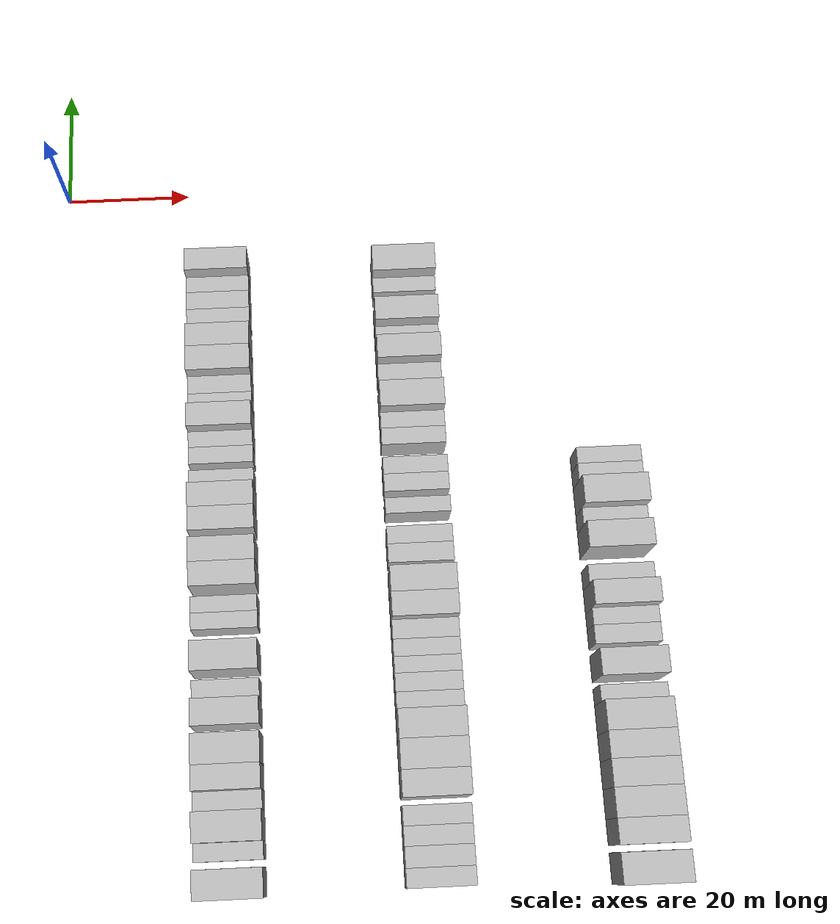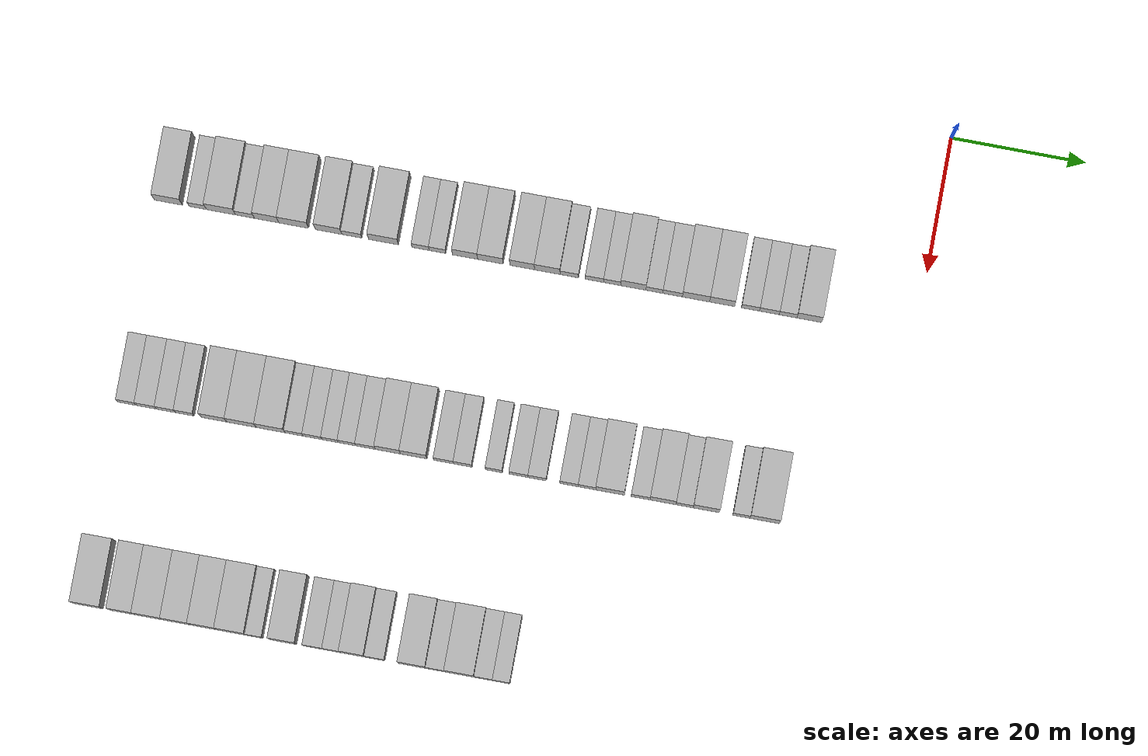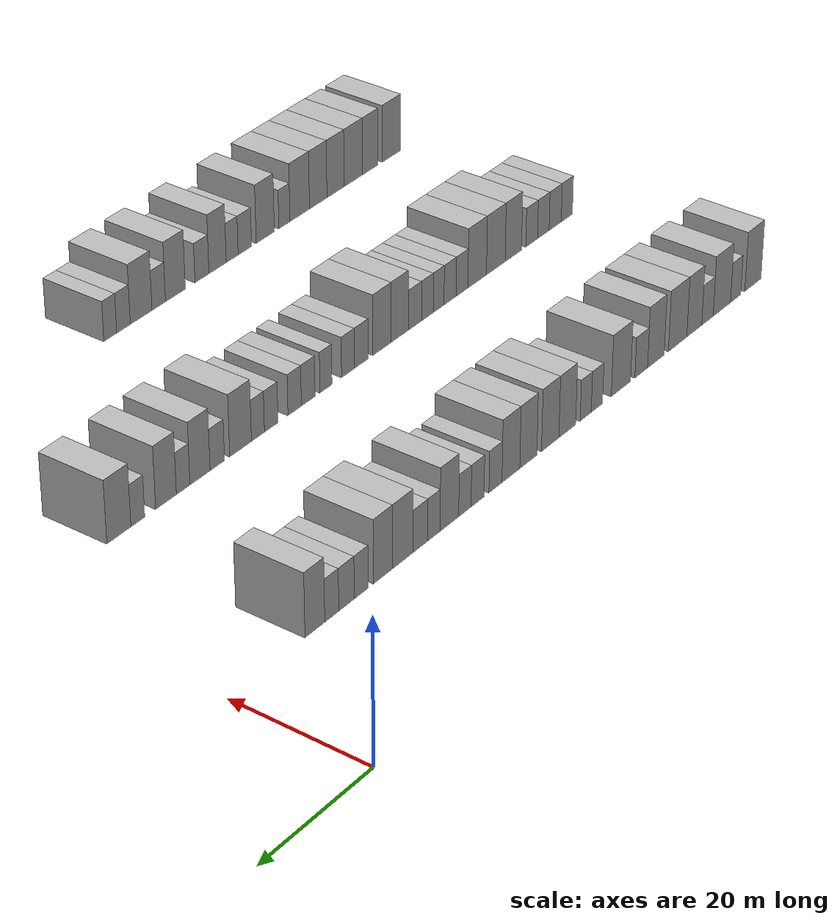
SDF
<sdf version="1.6">
 <world name="default">
  <model name="building_83">
   <static>1</static>
   <pose>25.0000 -110.6891 0 0.000000 0.000000 0.000000</pose>
   <link name="link">
    <pose>0 0 4.50 0 0 0</pose>
    <collision name="collision"><geometry><box><size>10.0000 4.1392 9.0000</size></box></geometry></collision>
    <visual name="visual">
     <cast_shadows>0</cast_shadows>
     <geometry><box><size>10.0000 4.1392 9.0000</size></box></geometry>
     <material>
      <script>
       <uri>model://HANNAS_wall/materials/scripts</uri>
       <uri>model://HANNAS_wall/materials/textures</uri>
       <name>vrc/HANNAS_wall</name>
      </script>
     </material>
    </visual>
   </link>
  </model>
  <model name="building_84">
   <static>1</static>
   <pose>25.0000 -106.3340 0 0.000000 0.000000 0.000000</pose>
   <link name="link">
    <pose>0 0 3.00 0 0 0</pose>
    <collision name="collision"><geometry><box><size>10.0000 2.5711 6.0000</size></box></geometry></collision>
    <visual name="visual">
     <cast_shadows>0</cast_shadows>
     <geometry><box><size>10.0000 2.5711 6.0000</size></box></geometry>
     <material>
      <script>
       <uri>model://HANNAS_wall/materials/scripts</uri>
       <uri>model://HANNAS_wall/materials/textures</uri>
       <name>vrc/HANNAS_wall</name>
      </script>
     </material>
    </visual>
   </link>
  </model>
  <model name="building_85">
   <static>1</static>
   <pose>25.0000 -102.8976 0 0.000000 0.000000 0.000000</pose>
   <link name="link">
    <pose>0 0 4.50 0 0 0</pose>
    <collision name="collision"><geometry><box><size>10.0000 4.3016 9.0000</size></box></geometry></collision>
    <visual name="visual">
     <cast_shadows>0</cast_shadows>
     <geometry><box><size>10.0000 4.3016 9.0000</size></box></geometry>
     <material>
      <script>
       <uri>model://HANNAS_wall/materials/scripts</uri>
       <uri>model://HANNAS_wall/materials/textures</uri>
       <name>vrc/HANNAS_wall</name>
      </script>
     </material>
    </visual>
   </link>
  </model>
  <model name="building_86">
   <static>1</static>
   <pose>25.0000 -99.3398 0 0.000000 0.000000 0.000000</pose>
   <link name="link">
    <pose>0 0 3.00 0 0 0</pose>
    <collision name="collision"><geometry><box><size>10.0000 2.8141 6.0000</size></box></geometry></collision>
    <visual name="visual">
     <cast_shadows>0</cast_shadows>
     <geometry><box><size>10.0000 2.8141 6.0000</size></box></geometry>
     <material>
      <script>
       <uri>model://HANNAS_wall/materials/scripts</uri>
       <uri>model://HANNAS_wall/materials/textures</uri>
       <name>vrc/HANNAS_wall</name>
      </script>
     </material>
    </visual>
   </link>
  </model>
  <model name="building_87">
   <static>1</static>
   <pose>25.0000 -96.1208 0 0.000000 0.000000 0.000000</pose>
   <link name="link">
    <pose>0 0 4.50 0 0 0</pose>
    <collision name="collision"><geometry><box><size>10.0000 3.6238 9.0000</size></box></geometry></collision>
    <visual name="visual">
     <cast_shadows>0</cast_shadows>
     <geometry><box><size>10.0000 3.6238 9.0000</size></box></geometry>
     <material>
      <script>
       <uri>model://HANNAS_wall/materials/scripts</uri>
       <uri>model://HANNAS_wall/materials/textures</uri>
       <name>vrc/HANNAS_wall</name>
      </script>
     </material>
    </visual>
   </link>
  </model>
  <model name="building_88">
   <static>1</static>
   <pose>25.0000 -92.0912 0 0.000000 0.000000 0.000000</pose>
   <link name="link">
    <pose>0 0 4.50 0 0 0</pose>
    <collision name="collision"><geometry><box><size>10.0000 4.4354 9.0000</size></box></geometry></collision>
    <visual name="visual">
     <cast_shadows>0</cast_shadows>
     <geometry><box><size>10.0000 4.4354 9.0000</size></box></geometry>
     <material>
      <script>
       <uri>model://HANNAS_wall/materials/scripts</uri>
       <uri>model://HANNAS_wall/materials/textures</uri>
       <name>vrc/HANNAS_wall</name>
      </script>
     </material>
    </visual>
   </link>
  </model>
  <model name="building_89">
   <static>1</static>
   <pose>25.0000 -86.9098 0 0.000000 0.000000 0.000000</pose>
   <link name="link">
    <pose>0 0 4.50 0 0 0</pose>
    <collision name="collision"><geometry><box><size>10.0000 3.9274 9.0000</size></box></geometry></collision>
    <visual name="visual">
     <cast_shadows>0</cast_shadows>
     <geometry><box><size>10.0000 3.9274 9.0000</size></box></geometry>
     <material>
      <script>
       <uri>model://HANNAS_wall/materials/scripts</uri>
       <uri>model://HANNAS_wall/materials/textures</uri>
       <name>vrc/HANNAS_wall</name>
      </script>
     </material>
    </visual>
   </link>
  </model>
  <model name="building_90">
   <static>1</static>
   <pose>25.0000 -83.4655 0 0.000000 0.000000 0.000000</pose>
   <link name="link">
    <pose>0 0 3.00 0 0 0</pose>
    <collision name="collision"><geometry><box><size>10.0000 2.9613 6.0000</size></box></geometry></collision>
    <visual name="visual">
     <cast_shadows>0</cast_shadows>
     <geometry><box><size>10.0000 2.9613 6.0000</size></box></geometry>
     <material>
      <script>
       <uri>model://HANNAS_wall/materials/scripts</uri>
       <uri>model://HANNAS_wall/materials/textures</uri>
       <name>vrc/HANNAS_wall</name>
      </script>
     </material>
    </visual>
   </link>
  </model>
  <model name="building_91">
   <static>1</static>
   <pose>25.0000 -78.7663 0 0.000000 0.000000 0.000000</pose>
   <link name="link">
    <pose>0 0 4.50 0 0 0</pose>
    <collision name="collision"><geometry><box><size>10.0000 4.4370 9.0000</size></box></geometry></collision>
    <visual name="visual">
     <cast_shadows>0</cast_shadows>
     <geometry><box><size>10.0000 4.4370 9.0000</size></box></geometry>
     <material>
      <script>
       <uri>model://HANNAS_wall/materials/scripts</uri>
       <uri>model://HANNAS_wall/materials/textures</uri>
       <name>vrc/HANNAS_wall</name>
      </script>
     </material>
    </visual>
   </link>
  </model>
  <model name="building_92">
   <static>1</static>
   <pose>25.0000 -73.2749 0 0.000000 0.000000 0.000000</pose>
   <link name="link">
    <pose>0 0 3.00 0 0 0</pose>
    <collision name="collision"><geometry><box><size>10.0000 2.5457 6.0000</size></box></geometry></collision>
    <visual name="visual">
     <cast_shadows>0</cast_shadows>
     <geometry><box><size>10.0000 2.5457 6.0000</size></box></geometry>
     <material>
      <script>
       <uri>model://HANNAS_wall/materials/scripts</uri>
       <uri>model://HANNAS_wall/materials/textures</uri>
       <name>vrc/HANNAS_wall</name>
      </script>
     </material>
    </visual>
   </link>
  </model>
  <model name="building_93">
   <static>1</static>
   <pose>25.0000 -70.7603 0 0.000000 0.000000 0.000000</pose>
   <link name="link">
    <pose>0 0 3.00 0 0 0</pose>
    <collision name="collision"><geometry><box><size>10.0000 2.4836 6.0000</size></box></geometry></collision>
    <visual name="visual">
     <cast_shadows>0</cast_shadows>
     <geometry><box><size>10.0000 2.4836 6.0000</size></box></geometry>
     <material>
      <script>
       <uri>model://HANNAS_wall/materials/scripts</uri>
       <uri>model://HANNAS_wall/materials/textures</uri>
       <name>vrc/HANNAS_wall</name>
      </script>
     </material>
    </visual>
   </link>
  </model>
  <model name="building_94">
   <static>1</static>
   <pose>25.0000 -66.6601 0 0.000000 0.000000 0.000000</pose>
   <link name="link">
    <pose>0 0 4.50 0 0 0</pose>
    <collision name="collision"><geometry><box><size>10.0000 3.7169 9.0000</size></box></geometry></collision>
    <visual name="visual">
     <cast_shadows>0</cast_shadows>
     <geometry><box><size>10.0000 3.7169 9.0000</size></box></geometry>
     <material>
      <script>
       <uri>model://HANNAS_wall/materials/scripts</uri>
       <uri>model://HANNAS_wall/materials/textures</uri>
       <name>vrc/HANNAS_wall</name>
      </script>
     </material>
    </visual>
   </link>
  </model>
  <model name="building_95">
   <static>1</static>
   <pose>25.0000 -62.9098 0 0.000000 0.000000 0.000000</pose>
   <link name="link">
    <pose>0 0 4.50 0 0 0</pose>
    <collision name="collision"><geometry><box><size>10.0000 3.7836 9.0000</size></box></geometry></collision>
    <visual name="visual">
     <cast_shadows>0</cast_shadows>
     <geometry><box><size>10.0000 3.7836 9.0000</size></box></geometry>
     <material>
      <script>
       <uri>model://HANNAS_wall/materials/scripts</uri>
       <uri>model://HANNAS_wall/materials/textures</uri>
       <name>vrc/HANNAS_wall</name>
      </script>
     </material>
    </visual>
   </link>
  </model>
  <model name="building_96">
   <static>1</static>
   <pose>25.0000 -58.1884 0 0.000000 0.000000 0.000000</pose>
   <link name="link">
    <pose>0 0 4.50 0 0 0</pose>
    <collision name="collision"><geometry><box><size>10.0000 3.6592 9.0000</size></box></geometry></collision>
    <visual name="visual">
     <cast_shadows>0</cast_shadows>
     <geometry><box><size>10.0000 3.6592 9.0000</size></box></geometry>
     <material>
      <script>
       <uri>model://HANNAS_wall/materials/scripts</uri>
       <uri>model://HANNAS_wall/materials/textures</uri>
       <name>vrc/HANNAS_wall</name>
      </script>
     </material>
    </visual>
   </link>
  </model>
  <model name="building_97">
   <static>1</static>
   <pose>25.0000 -54.4680 0 0.000000 0.000000 0.000000</pose>
   <link name="link">
    <pose>0 0 4.50 0 0 0</pose>
    <collision name="collision"><geometry><box><size>10.0000 3.7816 9.0000</size></box></geometry></collision>
    <visual name="visual">
     <cast_shadows>0</cast_shadows>
     <geometry><box><size>10.0000 3.7816 9.0000</size></box></geometry>
     <material>
      <script>
       <uri>model://HANNAS_wall/materials/scripts</uri>
       <uri>model://HANNAS_wall/materials/textures</uri>
       <name>vrc/HANNAS_wall</name>
      </script>
     </material>
    </visual>
   </link>
  </model>
  <model name="building_98">
   <static>1</static>
   <pose>25.0000 -51.2087 0 0.000000 0.000000 0.000000</pose>
   <link name="link">
    <pose>0 0 3.00 0 0 0</pose>
    <collision name="collision"><geometry><box><size>10.0000 2.7370 6.0000</size></box></geometry></collision>
    <visual name="visual">
     <cast_shadows>0</cast_shadows>
     <geometry><box><size>10.0000 2.7370 6.0000</size></box></geometry>
     <material>
      <script>
       <uri>model://HANNAS_wall/materials/scripts</uri>
       <uri>model://HANNAS_wall/materials/textures</uri>
       <name>vrc/HANNAS_wall</name>
      </script>
     </material>
    </visual>
   </link>
  </model>
  <model name="building_99">
   <static>1</static>
   <pose>25.0000 -47.4884 0 0.000000 0.000000 0.000000</pose>
   <link name="link">
    <pose>0 0 3.00 0 0 0</pose>
    <collision name="collision"><geometry><box><size>10.0000 2.7035 6.0000</size></box></geometry></collision>
    <visual name="visual">
     <cast_shadows>0</cast_shadows>
     <geometry><box><size>10.0000 2.7035 6.0000</size></box></geometry>
     <material>
      <script>
       <uri>model://HANNAS_wall/materials/scripts</uri>
       <uri>model://HANNAS_wall/materials/textures</uri>
       <name>vrc/HANNAS_wall</name>
      </script>
     </material>
    </visual>
   </link>
  </model>
  <model name="building_100">
   <static>1</static>
   <pose>25.0000 -44.8704 0 0.000000 0.000000 0.000000</pose>
   <link name="link">
    <pose>0 0 3.00 0 0 0</pose>
    <collision name="collision"><geometry><box><size>10.0000 2.5326 6.0000</size></box></geometry></collision>
    <visual name="visual">
     <cast_shadows>0</cast_shadows>
     <geometry><box><size>10.0000 2.5326 6.0000</size></box></geometry>
     <material>
      <script>
       <uri>model://HANNAS_wall/materials/scripts</uri>
       <uri>model://HANNAS_wall/materials/textures</uri>
       <name>vrc/HANNAS_wall</name>
      </script>
     </material>
    </visual>
   </link>
  </model>
  <model name="building_101">
   <static>1</static>
   <pose>25.0000 -41.7274 0 0.000000 0.000000 0.000000</pose>
   <link name="link">
    <pose>0 0 4.50 0 0 0</pose>
    <collision name="collision"><geometry><box><size>10.0000 3.7533 9.0000</size></box></geometry></collision>
    <visual name="visual">
     <cast_shadows>0</cast_shadows>
     <geometry><box><size>10.0000 3.7533 9.0000</size></box></geometry>
     <material>
      <script>
       <uri>model://HANNAS_wall/materials/scripts</uri>
       <uri>model://HANNAS_wall/materials/textures</uri>
       <name>vrc/HANNAS_wall</name>
      </script>
     </material>
    </visual>
   </link>
  </model>
  <model name="building_102">
   <static>1</static>
   <pose>25.0000 -38.6006 0 0.000000 0.000000 0.000000</pose>
   <link name="link">
    <pose>0 0 3.00 0 0 0</pose>
    <collision name="collision"><geometry><box><size>10.0000 2.5004 6.0000</size></box></geometry></collision>
    <visual name="visual">
     <cast_shadows>0</cast_shadows>
     <geometry><box><size>10.0000 2.5004 6.0000</size></box></geometry>
     <material>
      <script>
       <uri>model://HANNAS_wall/materials/scripts</uri>
       <uri>model://HANNAS_wall/materials/textures</uri>
       <name>vrc/HANNAS_wall</name>
      </script>
     </material>
    </visual>
   </link>
  </model>
  <model name="building_103">
   <static>1</static>
   <pose>25.0000 -35.8994 0 0.000000 0.000000 0.000000</pose>
   <link name="link">
    <pose>0 0 3.00 0 0 0</pose>
    <collision name="collision"><geometry><box><size>10.0000 2.9019 6.0000</size></box></geometry></collision>
    <visual name="visual">
     <cast_shadows>0</cast_shadows>
     <geometry><box><size>10.0000 2.9019 6.0000</size></box></geometry>
     <material>
      <script>
       <uri>model://HANNAS_wall/materials/scripts</uri>
       <uri>model://HANNAS_wall/materials/textures</uri>
       <name>vrc/HANNAS_wall</name>
      </script>
     </material>
    </visual>
   </link>
  </model>
  <model name="building_104">
   <static>1</static>
   <pose>25.0000 -32.4344 0 0.000000 0.000000 0.000000</pose>
   <link name="link">
    <pose>0 0 4.50 0 0 0</pose>
    <collision name="collision"><geometry><box><size>10.0000 4.0282 9.0000</size></box></geometry></collision>
    <visual name="visual">
     <cast_shadows>0</cast_shadows>
     <geometry><box><size>10.0000 4.0282 9.0000</size></box></geometry>
     <material>
      <script>
       <uri>model://HANNAS_wall/materials/scripts</uri>
       <uri>model://HANNAS_wall/materials/textures</uri>
       <name>vrc/HANNAS_wall</name>
      </script>
     </material>
    </visual>
   </link>
  </model>
  <model name="building_105">
   <static>1</static>
   <pose>25.0000 -28.5612 0 0.000000 0.000000 0.000000</pose>
   <link name="link">
    <pose>0 0 4.50 0 0 0</pose>
    <collision name="collision"><geometry><box><size>10.0000 3.7182 9.0000</size></box></geometry></collision>
    <visual name="visual">
     <cast_shadows>0</cast_shadows>
     <geometry><box><size>10.0000 3.7182 9.0000</size></box></geometry>
     <material>
      <script>
       <uri>model://HANNAS_wall/materials/scripts</uri>
       <uri>model://HANNAS_wall/materials/textures</uri>
       <name>vrc/HANNAS_wall</name>
      </script>
     </material>
    </visual>
   </link>
  </model>
  <model name="building_106">
   <static>1</static>
   <pose>25.0000 -24.3690 0 0.000000 0.000000 0.000000</pose>
   <link name="link">
    <pose>0 0 3.00 0 0 0</pose>
    <collision name="collision"><geometry><box><size>10.0000 2.6663 6.0000</size></box></geometry></collision>
    <visual name="visual">
     <cast_shadows>0</cast_shadows>
     <geometry><box><size>10.0000 2.6663 6.0000</size></box></geometry>
     <material>
      <script>
       <uri>model://HANNAS_wall/materials/scripts</uri>
       <uri>model://HANNAS_wall/materials/textures</uri>
       <name>vrc/HANNAS_wall</name>
      </script>
     </material>
    </visual>
   </link>
  </model>
  <model name="building_107">
   <static>1</static>
   <pose>25.0000 -21.5742 0 0.000000 0.000000 0.000000</pose>
   <link name="link">
    <pose>0 0 3.00 0 0 0</pose>
    <collision name="collision"><geometry><box><size>10.0000 2.9233 6.0000</size></box></geometry></collision>
    <visual name="visual">
     <cast_shadows>0</cast_shadows>
     <geometry><box><size>10.0000 2.9233 6.0000</size></box></geometry>
     <material>
      <script>
       <uri>model://HANNAS_wall/materials/scripts</uri>
       <uri>model://HANNAS_wall/materials/textures</uri>
       <name>vrc/HANNAS_wall</name>
      </script>
     </material>
    </visual>
   </link>
  </model>
  <model name="building_108">
   <static>1</static>
   <pose>25.0000 -18.8007 0 0.000000 0.000000 0.000000</pose>
   <link name="link">
    <pose>0 0 3.00 0 0 0</pose>
    <collision name="collision"><geometry><box><size>10.0000 2.6239 6.0000</size></box></geometry></collision>
    <visual name="visual">
     <cast_shadows>0</cast_shadows>
     <geometry><box><size>10.0000 2.6239 6.0000</size></box></geometry>
     <material>
      <script>
       <uri>model://HANNAS_wall/materials/scripts</uri>
       <uri>model://HANNAS_wall/materials/textures</uri>
       <name>vrc/HANNAS_wall</name>
      </script>
     </material>
    </visual>
   </link>
  </model>
  <model name="building_109">
   <static>1</static>
   <pose>25.0000 -15.6607 0 0.000000 0.000000 0.000000</pose>
   <link name="link">
    <pose>0 0 4.50 0 0 0</pose>
    <collision name="collision"><geometry><box><size>10.0000 3.6561 9.0000</size></box></geometry></collision>
    <visual name="visual">
     <cast_shadows>0</cast_shadows>
     <geometry><box><size>10.0000 3.6561 9.0000</size></box></geometry>
     <material>
      <script>
       <uri>model://HANNAS_wall/materials/scripts</uri>
       <uri>model://HANNAS_wall/materials/textures</uri>
       <name>vrc/HANNAS_wall</name>
      </script>
     </material>
    </visual>
   </link>
  </model>
  <model name="building_314">
   <static>1</static>
   <pose>55.0000 -111.1379 0 0.000000 0.000000 0.000000</pose>
   <link name="link">
    <pose>0 0 3.00 0 0 0</pose>
    <collision name="collision"><geometry><box><size>10.0000 2.7258 6.0000</size></box></geometry></collision>
    <visual name="visual">
     <cast_shadows>0</cast_shadows>
     <geometry><box><size>10.0000 2.7258 6.0000</size></box></geometry>
     <material>
      <script>
       <uri>model://HANNAS_wall/materials/scripts</uri>
       <uri>model://HANNAS_wall/materials/textures</uri>
       <name>vrc/HANNAS_wall</name>
      </script>
     </material>
    </visual>
   </link>
  </model>
  <model name="building_315">
   <static>1</static>
   <pose>55.0000 -108.2897 0 0.000000 0.000000 0.000000</pose>
   <link name="link">
    <pose>0 0 3.00 0 0 0</pose>
    <collision name="collision"><geometry><box><size>10.0000 2.9706 6.0000</size></box></geometry></collision>
    <visual name="visual">
     <cast_shadows>0</cast_shadows>
     <geometry><box><size>10.0000 2.9706 6.0000</size></box></geometry>
     <material>
      <script>
       <uri>model://HANNAS_wall/materials/scripts</uri>
       <uri>model://HANNAS_wall/materials/textures</uri>
       <name>vrc/HANNAS_wall</name>
      </script>
     </material>
    </visual>
   </link>
  </model>
  <model name="building_316">
   <static>1</static>
   <pose>55.0000 -105.4061 0 0.000000 0.000000 0.000000</pose>
   <link name="link">
    <pose>0 0 3.00 0 0 0</pose>
    <collision name="collision"><geometry><box><size>10.0000 2.7967 6.0000</size></box></geometry></collision>
    <visual name="visual">
     <cast_shadows>0</cast_shadows>
     <geometry><box><size>10.0000 2.7967 6.0000</size></box></geometry>
     <material>
      <script>
       <uri>model://HANNAS_wall/materials/scripts</uri>
       <uri>model://HANNAS_wall/materials/textures</uri>
       <name>vrc/HANNAS_wall</name>
      </script>
     </material>
    </visual>
   </link>
  </model>
  <model name="building_317">
   <static>1</static>
   <pose>55.0000 -102.6036 0 0.000000 0.000000 0.000000</pose>
   <link name="link">
    <pose>0 0 3.00 0 0 0</pose>
    <collision name="collision"><geometry><box><size>10.0000 2.8082 6.0000</size></box></geometry></collision>
    <visual name="visual">
     <cast_shadows>0</cast_shadows>
     <geometry><box><size>10.0000 2.8082 6.0000</size></box></geometry>
     <material>
      <script>
       <uri>model://HANNAS_wall/materials/scripts</uri>
       <uri>model://HANNAS_wall/materials/textures</uri>
       <name>vrc/HANNAS_wall</name>
      </script>
     </material>
    </visual>
   </link>
  </model>
  <model name="building_318">
   <static>1</static>
   <pose>55.0000 -98.2653 0 0.000000 0.000000 0.000000</pose>
   <link name="link">
    <pose>0 0 4.50 0 0 0</pose>
    <collision name="collision"><geometry><box><size>10.0000 3.8685 9.0000</size></box></geometry></collision>
    <visual name="visual">
     <cast_shadows>0</cast_shadows>
     <geometry><box><size>10.0000 3.8685 9.0000</size></box></geometry>
     <material>
      <script>
       <uri>model://HANNAS_wall/materials/scripts</uri>
       <uri>model://HANNAS_wall/materials/textures</uri>
       <name>vrc/HANNAS_wall</name>
      </script>
     </material>
    </visual>
   </link>
  </model>
  <model name="building_319">
   <static>1</static>
   <pose>55.0000 -94.1586 0 0.000000 0.000000 0.000000</pose>
   <link name="link">
    <pose>0 0 4.50 0 0 0</pose>
    <collision name="collision"><geometry><box><size>10.0000 4.3449 9.0000</size></box></geometry></collision>
    <visual name="visual">
     <cast_shadows>0</cast_shadows>
     <geometry><box><size>10.0000 4.3449 9.0000</size></box></geometry>
     <material>
      <script>
       <uri>model://HANNAS_wall/materials/scripts</uri>
       <uri>model://HANNAS_wall/materials/textures</uri>
       <name>vrc/HANNAS_wall</name>
      </script>
     </material>
    </visual>
   </link>
  </model>
  <model name="building_320">
   <static>1</static>
   <pose>55.0000 -89.8591 0 0.000000 0.000000 0.000000</pose>
   <link name="link">
    <pose>0 0 4.50 0 0 0</pose>
    <collision name="collision"><geometry><box><size>10.0000 4.2540 9.0000</size></box></geometry></collision>
    <visual name="visual">
     <cast_shadows>0</cast_shadows>
     <geometry><box><size>10.0000 4.2540 9.0000</size></box></geometry>
     <material>
      <script>
       <uri>model://HANNAS_wall/materials/scripts</uri>
       <uri>model://HANNAS_wall/materials/textures</uri>
       <name>vrc/HANNAS_wall</name>
      </script>
     </material>
    </visual>
   </link>
  </model>
  <model name="building_321">
   <static>1</static>
   <pose>55.0000 -86.3934 0 0.000000 0.000000 0.000000</pose>
   <link name="link">
    <pose>0 0 3.00 0 0 0</pose>
    <collision name="collision"><geometry><box><size>10.0000 2.6775 6.0000</size></box></geometry></collision>
    <visual name="visual">
     <cast_shadows>0</cast_shadows>
     <geometry><box><size>10.0000 2.6775 6.0000</size></box></geometry>
     <material>
      <script>
       <uri>model://HANNAS_wall/materials/scripts</uri>
       <uri>model://HANNAS_wall/materials/textures</uri>
       <name>vrc/HANNAS_wall</name>
      </script>
     </material>
    </visual>
   </link>
  </model>
  <model name="building_322">
   <static>1</static>
   <pose>55.0000 -83.6778 0 0.000000 0.000000 0.000000</pose>
   <link name="link">
    <pose>0 0 3.00 0 0 0</pose>
    <collision name="collision"><geometry><box><size>10.0000 2.7536 6.0000</size></box></geometry></collision>
    <visual name="visual">
     <cast_shadows>0</cast_shadows>
     <geometry><box><size>10.0000 2.7536 6.0000</size></box></geometry>
     <material>
      <script>
       <uri>model://HANNAS_wall/materials/scripts</uri>
       <uri>model://HANNAS_wall/materials/textures</uri>
       <name>vrc/HANNAS_wall</name>
      </script>
     </material>
    </visual>
   </link>
  </model>
  <model name="building_323">
   <static>1</static>
   <pose>55.0000 -81.0873 0 0.000000 0.000000 0.000000</pose>
   <link name="link">
    <pose>0 0 3.00 0 0 0</pose>
    <collision name="collision"><geometry><box><size>10.0000 2.4275 6.0000</size></box></geometry></collision>
    <visual name="visual">
     <cast_shadows>0</cast_shadows>
     <geometry><box><size>10.0000 2.4275 6.0000</size></box></geometry>
     <material>
      <script>
       <uri>model://HANNAS_wall/materials/scripts</uri>
       <uri>model://HANNAS_wall/materials/textures</uri>
       <name>vrc/HANNAS_wall</name>
      </script>
     </material>
    </visual>
   </link>
  </model>
  <model name="building_324">
   <static>1</static>
   <pose>55.0000 -78.5776 0 0.000000 0.000000 0.000000</pose>
   <link name="link">
    <pose>0 0 3.00 0 0 0</pose>
    <collision name="collision"><geometry><box><size>10.0000 2.5920 6.0000</size></box></geometry></collision>
    <visual name="visual">
     <cast_shadows>0</cast_shadows>
     <geometry><box><size>10.0000 2.5920 6.0000</size></box></geometry>
     <material>
      <script>
       <uri>model://HANNAS_wall/materials/scripts</uri>
       <uri>model://HANNAS_wall/materials/textures</uri>
       <name>vrc/HANNAS_wall</name>
      </script>
     </material>
    </visual>
   </link>
  </model>
  <model name="building_325">
   <static>1</static>
   <pose>55.0000 -75.8238 0 0.000000 0.000000 0.000000</pose>
   <link name="link">
    <pose>0 0 3.00 0 0 0</pose>
    <collision name="collision"><geometry><box><size>10.0000 2.9155 6.0000</size></box></geometry></collision>
    <visual name="visual">
     <cast_shadows>0</cast_shadows>
     <geometry><box><size>10.0000 2.9155 6.0000</size></box></geometry>
     <material>
      <script>
       <uri>model://HANNAS_wall/materials/scripts</uri>
       <uri>model://HANNAS_wall/materials/textures</uri>
       <name>vrc/HANNAS_wall</name>
      </script>
     </material>
    </visual>
   </link>
  </model>
  <model name="building_326">
   <static>1</static>
   <pose>55.0000 -72.5189 0 0.000000 0.000000 0.000000</pose>
   <link name="link">
    <pose>0 0 4.50 0 0 0</pose>
    <collision name="collision"><geometry><box><size>10.0000 3.6944 9.0000</size></box></geometry></collision>
    <visual name="visual">
     <cast_shadows>0</cast_shadows>
     <geometry><box><size>10.0000 3.6944 9.0000</size></box></geometry>
     <material>
      <script>
       <uri>model://HANNAS_wall/materials/scripts</uri>
       <uri>model://HANNAS_wall/materials/textures</uri>
       <name>vrc/HANNAS_wall</name>
      </script>
     </material>
    </visual>
   </link>
  </model>
  <model name="building_327">
   <static>1</static>
   <pose>55.0000 -68.6946 0 0.000000 0.000000 0.000000</pose>
   <link name="link">
    <pose>0 0 4.50 0 0 0</pose>
    <collision name="collision"><geometry><box><size>10.0000 3.9541 9.0000</size></box></geometry></collision>
    <visual name="visual">
     <cast_shadows>0</cast_shadows>
     <geometry><box><size>10.0000 3.9541 9.0000</size></box></geometry>
     <material>
      <script>
       <uri>model://HANNAS_wall/materials/scripts</uri>
       <uri>model://HANNAS_wall/materials/textures</uri>
       <name>vrc/HANNAS_wall</name>
      </script>
     </material>
    </visual>
   </link>
  </model>
  <model name="building_328">
   <static>1</static>
   <pose>55.0000 -64.2583 0 0.000000 0.000000 0.000000</pose>
   <link name="link">
    <pose>0 0 3.00 0 0 0</pose>
    <collision name="collision"><geometry><box><size>10.0000 2.9184 6.0000</size></box></geometry></collision>
    <visual name="visual">
     <cast_shadows>0</cast_shadows>
     <geometry><box><size>10.0000 2.9184 6.0000</size></box></geometry>
     <material>
      <script>
       <uri>model://HANNAS_wall/materials/scripts</uri>
       <uri>model://HANNAS_wall/materials/textures</uri>
       <name>vrc/HANNAS_wall</name>
      </script>
     </material>
    </visual>
   </link>
  </model>
  <model name="building_329">
   <static>1</static>
   <pose>55.0000 -61.4358 0 0.000000 0.000000 0.000000</pose>
   <link name="link">
    <pose>0 0 3.00 0 0 0</pose>
    <collision name="collision"><geometry><box><size>10.0000 2.7267 6.0000</size></box></geometry></collision>
    <visual name="visual">
     <cast_shadows>0</cast_shadows>
     <geometry><box><size>10.0000 2.7267 6.0000</size></box></geometry>
     <material>
      <script>
       <uri>model://HANNAS_wall/materials/scripts</uri>
       <uri>model://HANNAS_wall/materials/textures</uri>
       <name>vrc/HANNAS_wall</name>
      </script>
     </material>
    </visual>
   </link>
  </model>
  <model name="building_330">
   <static>1</static>
   <pose>55.0000 -56.8287 0 0.000000 0.000000 0.000000</pose>
   <link name="link">
    <pose>0 0 3.00 0 0 0</pose>
    <collision name="collision"><geometry><box><size>10.0000 2.4875 6.0000</size></box></geometry></collision>
    <visual name="visual">
     <cast_shadows>0</cast_shadows>
     <geometry><box><size>10.0000 2.4875 6.0000</size></box></geometry>
     <material>
      <script>
       <uri>model://HANNAS_wall/materials/scripts</uri>
       <uri>model://HANNAS_wall/materials/textures</uri>
       <name>vrc/HANNAS_wall</name>
      </script>
     </material>
    </visual>
   </link>
  </model>
  <model name="building_331">
   <static>1</static>
   <pose>55.0000 -53.1826 0 0.000000 0.000000 0.000000</pose>
   <link name="link">
    <pose>0 0 3.00 0 0 0</pose>
    <collision name="collision"><geometry><box><size>10.0000 2.8047 6.0000</size></box></geometry></collision>
    <visual name="visual">
     <cast_shadows>0</cast_shadows>
     <geometry><box><size>10.0000 2.8047 6.0000</size></box></geometry>
     <material>
      <script>
       <uri>model://HANNAS_wall/materials/scripts</uri>
       <uri>model://HANNAS_wall/materials/textures</uri>
       <name>vrc/HANNAS_wall</name>
      </script>
     </material>
    </visual>
   </link>
  </model>
  <model name="building_332">
   <static>1</static>
   <pose>55.0000 -50.4234 0 0.000000 0.000000 0.000000</pose>
   <link name="link">
    <pose>0 0 3.00 0 0 0</pose>
    <collision name="collision"><geometry><box><size>10.0000 2.7137 6.0000</size></box></geometry></collision>
    <visual name="visual">
     <cast_shadows>0</cast_shadows>
     <geometry><box><size>10.0000 2.7137 6.0000</size></box></geometry>
     <material>
      <script>
       <uri>model://HANNAS_wall/materials/scripts</uri>
       <uri>model://HANNAS_wall/materials/textures</uri>
       <name>vrc/HANNAS_wall</name>
      </script>
     </material>
    </visual>
   </link>
  </model>
  <model name="building_333">
   <static>1</static>
   <pose>55.0000 -45.7152 0 0.000000 0.000000 0.000000</pose>
   <link name="link">
    <pose>0 0 3.00 0 0 0</pose>
    <collision name="collision"><geometry><box><size>10.0000 2.7028 6.0000</size></box></geometry></collision>
    <visual name="visual">
     <cast_shadows>0</cast_shadows>
     <geometry><box><size>10.0000 2.7028 6.0000</size></box></geometry>
     <material>
      <script>
       <uri>model://HANNAS_wall/materials/scripts</uri>
       <uri>model://HANNAS_wall/materials/textures</uri>
       <name>vrc/HANNAS_wall</name>
      </script>
     </material>
    </visual>
   </link>
  </model>
  <model name="building_334">
   <static>1</static>
   <pose>55.0000 -43.0712 0 0.000000 0.000000 0.000000</pose>
   <link name="link">
    <pose>0 0 3.00 0 0 0</pose>
    <collision name="collision"><geometry><box><size>10.0000 2.5852 6.0000</size></box></geometry></collision>
    <visual name="visual">
     <cast_shadows>0</cast_shadows>
     <geometry><box><size>10.0000 2.5852 6.0000</size></box></geometry>
     <material>
      <script>
       <uri>model://HANNAS_wall/materials/scripts</uri>
       <uri>model://HANNAS_wall/materials/textures</uri>
       <name>vrc/HANNAS_wall</name>
      </script>
     </material>
    </visual>
   </link>
  </model>
  <model name="building_335">
   <static>1</static>
   <pose>55.0000 -39.6541 0 0.000000 0.000000 0.000000</pose>
   <link name="link">
    <pose>0 0 4.50 0 0 0</pose>
    <collision name="collision"><geometry><box><size>10.0000 4.2490 9.0000</size></box></geometry></collision>
    <visual name="visual">
     <cast_shadows>0</cast_shadows>
     <geometry><box><size>10.0000 4.2490 9.0000</size></box></geometry>
     <material>
      <script>
       <uri>model://HANNAS_wall/materials/scripts</uri>
       <uri>model://HANNAS_wall/materials/textures</uri>
       <name>vrc/HANNAS_wall</name>
      </script>
     </material>
    </visual>
   </link>
  </model>
  <model name="building_336">
   <static>1</static>
   <pose>55.0000 -35.1371 0 0.000000 0.000000 0.000000</pose>
   <link name="link">
    <pose>0 0 3.00 0 0 0</pose>
    <collision name="collision"><geometry><box><size>10.0000 2.7850 6.0000</size></box></geometry></collision>
    <visual name="visual">
     <cast_shadows>0</cast_shadows>
     <geometry><box><size>10.0000 2.7850 6.0000</size></box></geometry>
     <material>
      <script>
       <uri>model://HANNAS_wall/materials/scripts</uri>
       <uri>model://HANNAS_wall/materials/textures</uri>
       <name>vrc/HANNAS_wall</name>
      </script>
     </material>
    </visual>
   </link>
  </model>
  <model name="building_337">
   <static>1</static>
   <pose>55.0000 -31.8309 0 0.000000 0.000000 0.000000</pose>
   <link name="link">
    <pose>0 0 4.50 0 0 0</pose>
    <collision name="collision"><geometry><box><size>10.0000 3.8275 9.0000</size></box></geometry></collision>
    <visual name="visual">
     <cast_shadows>0</cast_shadows>
     <geometry><box><size>10.0000 3.8275 9.0000</size></box></geometry>
     <material>
      <script>
       <uri>model://HANNAS_wall/materials/scripts</uri>
       <uri>model://HANNAS_wall/materials/textures</uri>
       <name>vrc/HANNAS_wall</name>
      </script>
     </material>
    </visual>
   </link>
  </model>
  <model name="building_338">
   <static>1</static>
   <pose>55.0000 -28.6382 0 0.000000 0.000000 0.000000</pose>
   <link name="link">
    <pose>0 0 3.00 0 0 0</pose>
    <collision name="collision"><geometry><box><size>10.0000 2.5579 6.0000</size></box></geometry></collision>
    <visual name="visual">
     <cast_shadows>0</cast_shadows>
     <geometry><box><size>10.0000 2.5579 6.0000</size></box></geometry>
     <material>
      <script>
       <uri>model://HANNAS_wall/materials/scripts</uri>
       <uri>model://HANNAS_wall/materials/textures</uri>
       <name>vrc/HANNAS_wall</name>
      </script>
     </material>
    </visual>
   </link>
  </model>
  <model name="building_339">
   <static>1</static>
   <pose>55.0000 -25.4277 0 0.000000 0.000000 0.000000</pose>
   <link name="link">
    <pose>0 0 4.50 0 0 0</pose>
    <collision name="collision"><geometry><box><size>10.0000 3.8631 9.0000</size></box></geometry></collision>
    <visual name="visual">
     <cast_shadows>0</cast_shadows>
     <geometry><box><size>10.0000 3.8631 9.0000</size></box></geometry>
     <material>
      <script>
       <uri>model://HANNAS_wall/materials/scripts</uri>
       <uri>model://HANNAS_wall/materials/textures</uri>
       <name>vrc/HANNAS_wall</name>
      </script>
     </material>
    </visual>
   </link>
  </model>
  <model name="building_340">
   <static>1</static>
   <pose>55.0000 -20.2300 0 0.000000 0.000000 0.000000</pose>
   <link name="link">
    <pose>0 0 3.00 0 0 0</pose>
    <collision name="collision"><geometry><box><size>10.0000 2.5323 6.0000</size></box></geometry></collision>
    <visual name="visual">
     <cast_shadows>0</cast_shadows>
     <geometry><box><size>10.0000 2.5323 6.0000</size></box></geometry>
     <material>
      <script>
       <uri>model://HANNAS_wall/materials/scripts</uri>
       <uri>model://HANNAS_wall/materials/textures</uri>
       <name>vrc/HANNAS_wall</name>
      </script>
     </material>
    </visual>
   </link>
  </model>
  <model name="building_341">
   <static>1</static>
   <pose>55.0000 -16.7841 0 0.000000 0.000000 0.000000</pose>
   <link name="link">
    <pose>0 0 4.50 0 0 0</pose>
    <collision name="collision"><geometry><box><size>10.0000 4.3595 9.0000</size></box></geometry></collision>
    <visual name="visual">
     <cast_shadows>0</cast_shadows>
     <geometry><box><size>10.0000 4.3595 9.0000</size></box></geometry>
     <material>
      <script>
       <uri>model://HANNAS_wall/materials/scripts</uri>
       <uri>model://HANNAS_wall/materials/textures</uri>
       <name>vrc/HANNAS_wall</name>
      </script>
     </material>
    </visual>
   </link>
  </model>
  <model name="building_540">
   <static>1</static>
   <pose>85.0000 -111.2227 0 0.000000 0.000000 0.000000</pose>
   <link name="link">
    <pose>0 0 4.50 0 0 0</pose>
    <collision name="collision"><geometry><box><size>10.0000 4.4056 9.0000</size></box></geometry></collision>
    <visual name="visual">
     <cast_shadows>0</cast_shadows>
     <geometry><box><size>10.0000 4.4056 9.0000</size></box></geometry>
     <material>
      <script>
       <uri>model://HANNAS_wall/materials/scripts</uri>
       <uri>model://HANNAS_wall/materials/textures</uri>
       <name>vrc/HANNAS_wall</name>
      </script>
     </material>
    </visual>
   </link>
  </model>
  <model name="building_541">
   <static>1</static>
   <pose>85.0000 -106.1929 0 0.000000 0.000000 0.000000</pose>
   <link name="link">
    <pose>0 0 4.50 0 0 0</pose>
    <collision name="collision"><geometry><box><size>10.0000 3.6541 9.0000</size></box></geometry></collision>
    <visual name="visual">
     <cast_shadows>0</cast_shadows>
     <geometry><box><size>10.0000 3.6541 9.0000</size></box></geometry>
     <material>
      <script>
       <uri>model://HANNAS_wall/materials/scripts</uri>
       <uri>model://HANNAS_wall/materials/textures</uri>
       <name>vrc/HANNAS_wall</name>
      </script>
     </material>
    </visual>
   </link>
  </model>
  <model name="building_542">
   <static>1</static>
   <pose>85.0000 -102.2532 0 0.000000 0.000000 0.000000</pose>
   <link name="link">
    <pose>0 0 4.50 0 0 0</pose>
    <collision name="collision"><geometry><box><size>10.0000 4.2254 9.0000</size></box></geometry></collision>
    <visual name="visual">
     <cast_shadows>0</cast_shadows>
     <geometry><box><size>10.0000 4.2254 9.0000</size></box></geometry>
     <material>
      <script>
       <uri>model://HANNAS_wall/materials/scripts</uri>
       <uri>model://HANNAS_wall/materials/textures</uri>
       <name>vrc/HANNAS_wall</name>
      </script>
     </material>
    </visual>
   </link>
  </model>
  <model name="building_543">
   <static>1</static>
   <pose>85.0000 -98.1596 0 0.000000 0.000000 0.000000</pose>
   <link name="link">
    <pose>0 0 4.50 0 0 0</pose>
    <collision name="collision"><geometry><box><size>10.0000 3.9616 9.0000</size></box></geometry></collision>
    <visual name="visual">
     <cast_shadows>0</cast_shadows>
     <geometry><box><size>10.0000 3.9616 9.0000</size></box></geometry>
     <material>
      <script>
       <uri>model://HANNAS_wall/materials/scripts</uri>
       <uri>model://HANNAS_wall/materials/textures</uri>
       <name>vrc/HANNAS_wall</name>
      </script>
     </material>
    </visual>
   </link>
  </model>
  <model name="building_544">
   <static>1</static>
   <pose>85.0000 -94.2033 0 0.000000 0.000000 0.000000</pose>
   <link name="link">
    <pose>0 0 4.50 0 0 0</pose>
    <collision name="collision"><geometry><box><size>10.0000 3.9510 9.0000</size></box></geometry></collision>
    <visual name="visual">
     <cast_shadows>0</cast_shadows>
     <geometry><box><size>10.0000 3.9510 9.0000</size></box></geometry>
     <material>
      <script>
       <uri>model://HANNAS_wall/materials/scripts</uri>
       <uri>model://HANNAS_wall/materials/textures</uri>
       <name>vrc/HANNAS_wall</name>
      </script>
     </material>
    </visual>
   </link>
  </model>
  <model name="building_545">
   <static>1</static>
   <pose>85.0000 -90.0386 0 0.000000 0.000000 0.000000</pose>
   <link name="link">
    <pose>0 0 4.50 0 0 0</pose>
    <collision name="collision"><geometry><box><size>10.0000 4.3784 9.0000</size></box></geometry></collision>
    <visual name="visual">
     <cast_shadows>0</cast_shadows>
     <geometry><box><size>10.0000 4.3784 9.0000</size></box></geometry>
     <material>
      <script>
       <uri>model://HANNAS_wall/materials/scripts</uri>
       <uri>model://HANNAS_wall/materials/textures</uri>
       <name>vrc/HANNAS_wall</name>
      </script>
     </material>
    </visual>
   </link>
  </model>
  <model name="building_546">
   <static>1</static>
   <pose>85.0000 -86.6216 0 0.000000 0.000000 0.000000</pose>
   <link name="link">
    <pose>0 0 3.00 0 0 0</pose>
    <collision name="collision"><geometry><box><size>10.0000 2.4555 6.0000</size></box></geometry></collision>
    <visual name="visual">
     <cast_shadows>0</cast_shadows>
     <geometry><box><size>10.0000 2.4555 6.0000</size></box></geometry>
     <material>
      <script>
       <uri>model://HANNAS_wall/materials/scripts</uri>
       <uri>model://HANNAS_wall/materials/textures</uri>
       <name>vrc/HANNAS_wall</name>
      </script>
     </material>
    </visual>
   </link>
  </model>
  <model name="building_547">
   <static>1</static>
   <pose>85.0000 -82.4065 0 0.000000 0.000000 0.000000</pose>
   <link name="link">
    <pose>0 0 4.50 0 0 0</pose>
    <collision name="collision"><geometry><box><size>10.0000 3.9747 9.0000</size></box></geometry></collision>
    <visual name="visual">
     <cast_shadows>0</cast_shadows>
     <geometry><box><size>10.0000 3.9747 9.0000</size></box></geometry>
     <material>
      <script>
       <uri>model://HANNAS_wall/materials/scripts</uri>
       <uri>model://HANNAS_wall/materials/textures</uri>
       <name>vrc/HANNAS_wall</name>
      </script>
     </material>
    </visual>
   </link>
  </model>
  <model name="building_548">
   <static>1</static>
   <pose>85.0000 -77.9730 0 0.000000 0.000000 0.000000</pose>
   <link name="link">
    <pose>0 0 3.00 0 0 0</pose>
    <collision name="collision"><geometry><box><size>10.0000 2.8922 6.0000</size></box></geometry></collision>
    <visual name="visual">
     <cast_shadows>0</cast_shadows>
     <geometry><box><size>10.0000 2.8922 6.0000</size></box></geometry>
     <material>
      <script>
       <uri>model://HANNAS_wall/materials/scripts</uri>
       <uri>model://HANNAS_wall/materials/textures</uri>
       <name>vrc/HANNAS_wall</name>
      </script>
     </material>
    </visual>
   </link>
  </model>
  <model name="building_549">
   <static>1</static>
   <pose>85.0000 -75.2498 0 0.000000 0.000000 0.000000</pose>
   <link name="link">
    <pose>0 0 3.00 0 0 0</pose>
    <collision name="collision"><geometry><box><size>10.0000 2.5542 6.0000</size></box></geometry></collision>
    <visual name="visual">
     <cast_shadows>0</cast_shadows>
     <geometry><box><size>10.0000 2.5542 6.0000</size></box></geometry>
     <material>
      <script>
       <uri>model://HANNAS_wall/materials/scripts</uri>
       <uri>model://HANNAS_wall/materials/textures</uri>
       <name>vrc/HANNAS_wall</name>
      </script>
     </material>
    </visual>
   </link>
  </model>
  <model name="building_550">
   <static>1</static>
   <pose>85.0000 -72.1442 0 0.000000 0.000000 0.000000</pose>
   <link name="link">
    <pose>0 0 4.50 0 0 0</pose>
    <collision name="collision"><geometry><box><size>10.0000 3.6570 9.0000</size></box></geometry></collision>
    <visual name="visual">
     <cast_shadows>0</cast_shadows>
     <geometry><box><size>10.0000 3.6570 9.0000</size></box></geometry>
     <material>
      <script>
       <uri>model://HANNAS_wall/materials/scripts</uri>
       <uri>model://HANNAS_wall/materials/textures</uri>
       <name>vrc/HANNAS_wall</name>
      </script>
     </material>
    </visual>
   </link>
  </model>
  <model name="building_551">
   <static>1</static>
   <pose>85.0000 -68.8464 0 0.000000 0.000000 0.000000</pose>
   <link name="link">
    <pose>0 0 3.00 0 0 0</pose>
    <collision name="collision"><geometry><box><size>10.0000 2.9386 6.0000</size></box></geometry></collision>
    <visual name="visual">
     <cast_shadows>0</cast_shadows>
     <geometry><box><size>10.0000 2.9386 6.0000</size></box></geometry>
     <material>
      <script>
       <uri>model://HANNAS_wall/materials/scripts</uri>
       <uri>model://HANNAS_wall/materials/textures</uri>
       <name>vrc/HANNAS_wall</name>
      </script>
     </material>
    </visual>
   </link>
  </model>
  <model name="building_552">
   <static>1</static>
   <pose>85.0000 -63.3361 0 0.000000 0.000000 0.000000</pose>
   <link name="link">
    <pose>0 0 4.50 0 0 0</pose>
    <collision name="collision"><geometry><box><size>10.0000 4.0820 9.0000</size></box></geometry></collision>
    <visual name="visual">
     <cast_shadows>0</cast_shadows>
     <geometry><box><size>10.0000 4.0820 9.0000</size></box></geometry>
     <material>
      <script>
       <uri>model://HANNAS_wall/materials/scripts</uri>
       <uri>model://HANNAS_wall/materials/textures</uri>
       <name>vrc/HANNAS_wall</name>
      </script>
     </material>
    </visual>
   </link>
  </model>
  <model name="building_553">
   <static>1</static>
   <pose>85.0000 -59.9154 0 0.000000 0.000000 0.000000</pose>
   <link name="link">
    <pose>0 0 3.00 0 0 0</pose>
    <collision name="collision"><geometry><box><size>10.0000 2.7595 6.0000</size></box></geometry></collision>
    <visual name="visual">
     <cast_shadows>0</cast_shadows>
     <geometry><box><size>10.0000 2.7595 6.0000</size></box></geometry>
     <material>
      <script>
       <uri>model://HANNAS_wall/materials/scripts</uri>
       <uri>model://HANNAS_wall/materials/textures</uri>
       <name>vrc/HANNAS_wall</name>
      </script>
     </material>
    </visual>
   </link>
  </model>
  <model name="building_554">
   <static>1</static>
   <pose>85.0000 -56.3499 0 0.000000 0.000000 0.000000</pose>
   <link name="link">
    <pose>0 0 4.50 0 0 0</pose>
    <collision name="collision"><geometry><box><size>10.0000 4.3715 9.0000</size></box></geometry></collision>
    <visual name="visual">
     <cast_shadows>0</cast_shadows>
     <geometry><box><size>10.0000 4.3715 9.0000</size></box></geometry>
     <material>
      <script>
       <uri>model://HANNAS_wall/materials/scripts</uri>
       <uri>model://HANNAS_wall/materials/textures</uri>
       <name>vrc/HANNAS_wall</name>
      </script>
     </material>
    </visual>
   </link>
  </model>
  <model name="building_555">
   <static>1</static>
   <pose>85.0000 -52.8108 0 0.000000 0.000000 0.000000</pose>
   <link name="link">
    <pose>0 0 3.00 0 0 0</pose>
    <collision name="collision"><geometry><box><size>10.0000 2.7066 6.0000</size></box></geometry></collision>
    <visual name="visual">
     <cast_shadows>0</cast_shadows>
     <geometry><box><size>10.0000 2.7066 6.0000</size></box></geometry>
     <material>
      <script>
       <uri>model://HANNAS_wall/materials/scripts</uri>
       <uri>model://HANNAS_wall/materials/textures</uri>
       <name>vrc/HANNAS_wall</name>
      </script>
     </material>
    </visual>
   </link>
  </model>
  <model name="building_556">
   <static>1</static>
   <pose>85.0000 -50.1788 0 0.000000 0.000000 0.000000</pose>
   <link name="link">
    <pose>0 0 3.00 0 0 0</pose>
    <collision name="collision"><geometry><box><size>10.0000 2.5576 6.0000</size></box></geometry></collision>
    <visual name="visual">
     <cast_shadows>0</cast_shadows>
     <geometry><box><size>10.0000 2.5576 6.0000</size></box></geometry>
     <material>
      <script>
       <uri>model://HANNAS_wall/materials/scripts</uri>
       <uri>model://HANNAS_wall/materials/textures</uri>
       <name>vrc/HANNAS_wall</name>
      </script>
     </material>
    </visual>
   </link>
  </model>
 </world>
</sdf>
